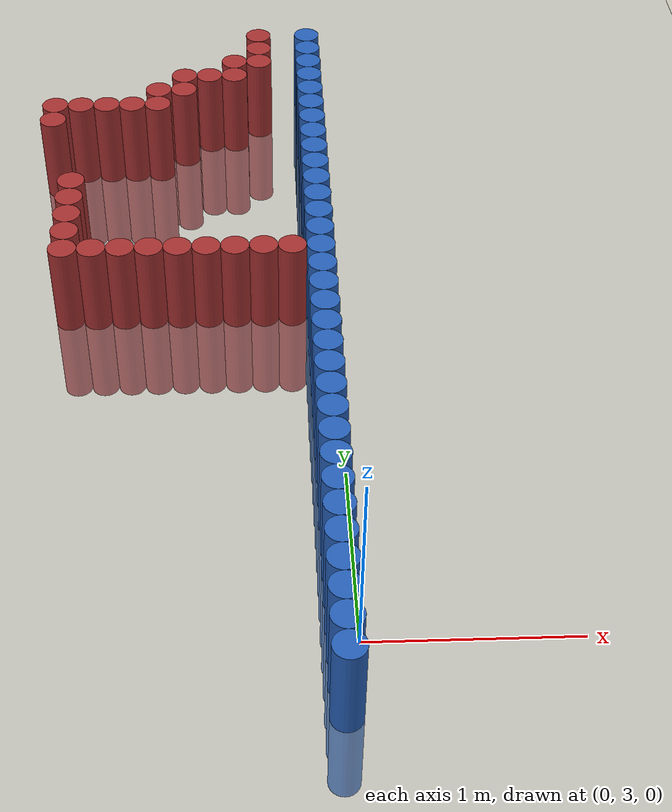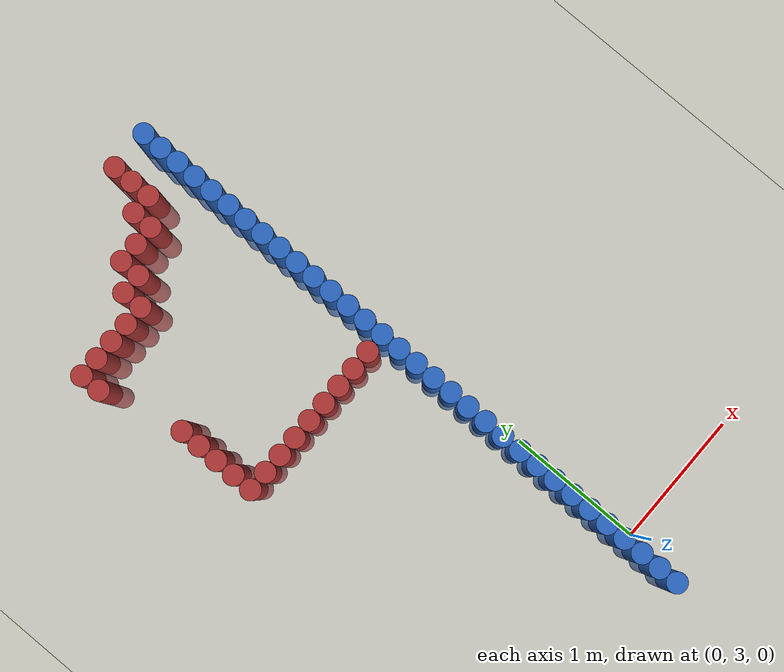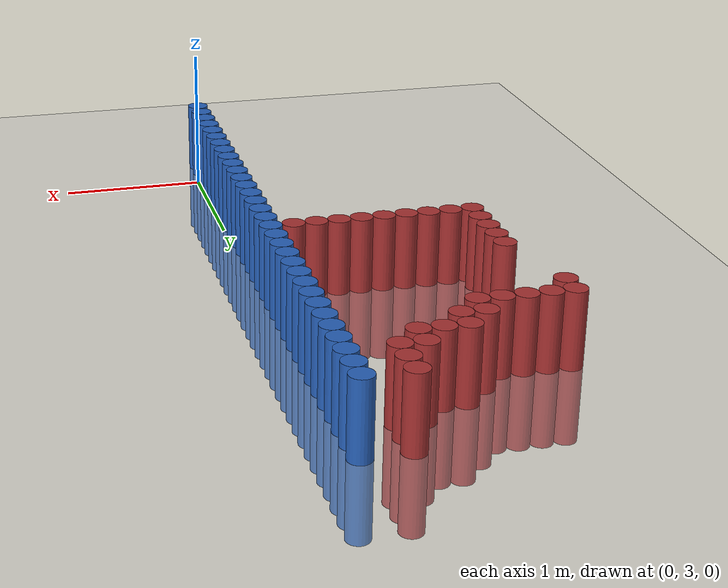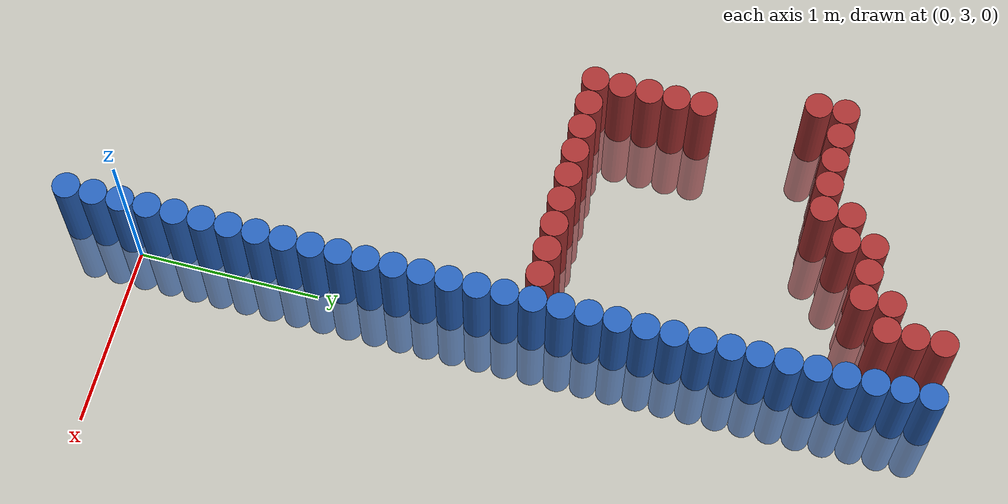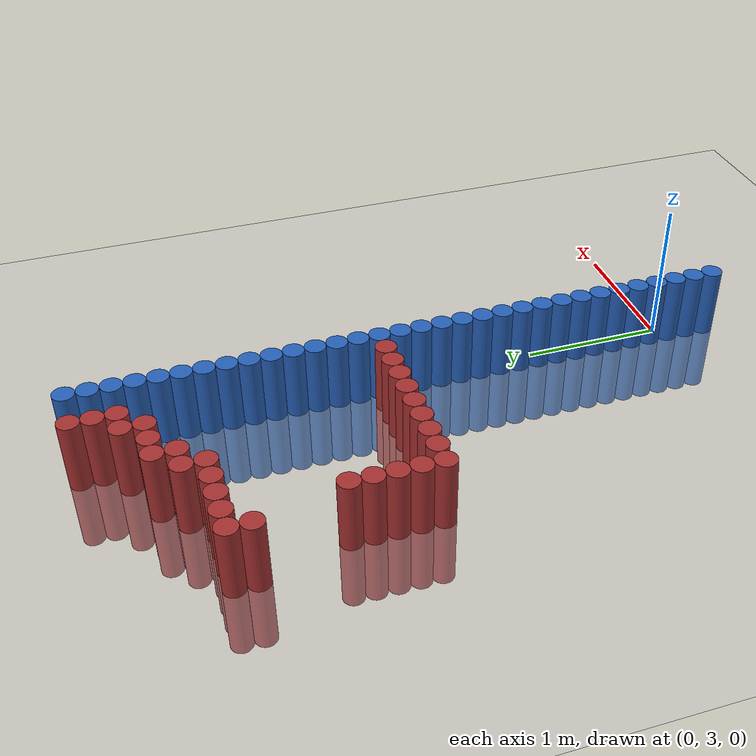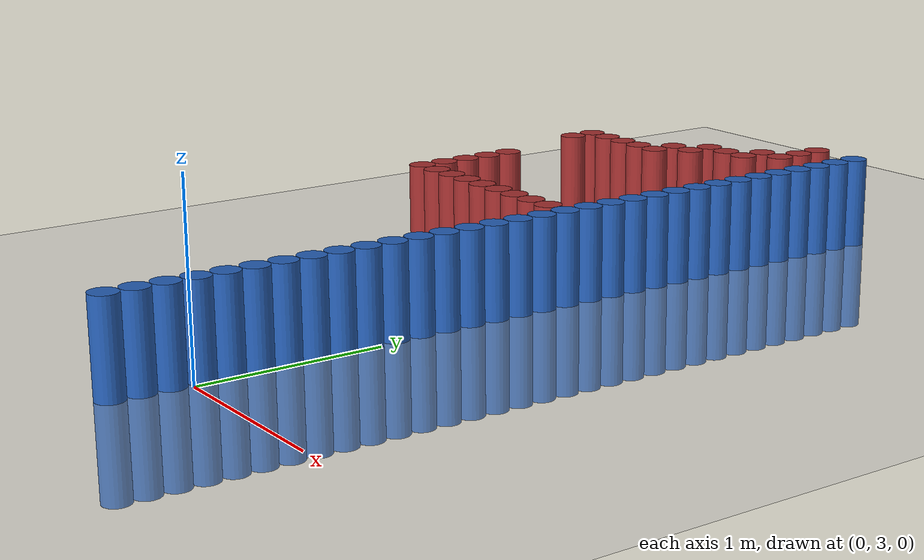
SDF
<sdf version="1.6">
 <world name="default">
  <model name="ground_plane">
   <static>1</static>
   <link name="link">
    <collision name="collision">
     <geometry><plane><normal>0 0 1</normal><size>100 100</size></plane></geometry>
     <surface><friction><ode><mu>100</mu><mu2>50</mu2></ode></friction></surface>
    </collision>
    <visual name="visual">
     <cast_shadows>0</cast_shadows>
     <geometry><plane><normal>0 0 1</normal><size>100 100</size></plane></geometry>
     <material>
      <script><uri>file://media/materials/scripts/gazebo.material</uri><name>Gazebo/Grey</name></script>
     </material>
    </visual>
   </link>
  </model>
  <model name="unit_cylinder_111">
   <static>1</static>
   <pose>-0.075 2.625 0 0 -0 0</pose>
   <link name="link">
    <inertial>
     <mass>1</mass>
     <inertia><ixx>0.145833</ixx><ixy>0</ixy><ixz>0</ixz><iyy>0.145833</iyy><iyz>0</iyz><izz>0.125</izz></inertia>
    </inertial>
    <collision name="collision">
     <geometry><cylinder><radius>0.075</radius><length>1</length></cylinder></geometry>
    </collision>
    <visual name="visual">
     <geometry><cylinder><radius>0.075</radius><length>1</length></cylinder></geometry>
     <material><ambient>0.152 0.379 0.72 1</ambient><diffuse>0.152 0.379 0.72 1</diffuse></material>
     <material>
      <script><name>Gazebo/Grey</name><uri>file://media/materials/scripts/gazebo.material</uri></script>
     </material>
    </visual>
   </link>
  </model>
  <model name="unit_cylinder_113">
   <static>1</static>
   <pose>-0.075 2.775 0 0 -0 0</pose>
   <link name="link">
    <inertial>
     <mass>1</mass>
     <inertia><ixx>0.145833</ixx><ixy>0</ixy><ixz>0</ixz><iyy>0.145833</iyy><iyz>0</iyz><izz>0.125</izz></inertia>
    </inertial>
    <collision name="collision">
     <geometry><cylinder><radius>0.075</radius><length>1</length></cylinder></geometry>
    </collision>
    <visual name="visual">
     <geometry><cylinder><radius>0.075</radius><length>1</length></cylinder></geometry>
     <material><ambient>0.152 0.379 0.72 1</ambient><diffuse>0.152 0.379 0.72 1</diffuse></material>
     <material>
      <script><name>Gazebo/Grey</name><uri>file://media/materials/scripts/gazebo.material</uri></script>
     </material>
    </visual>
   </link>
  </model>
  <model name="unit_cylinder_115">
   <static>1</static>
   <pose>-0.075 2.925 0 0 -0 0</pose>
   <link name="link">
    <inertial>
     <mass>1</mass>
     <inertia><ixx>0.145833</ixx><ixy>0</ixy><ixz>0</ixz><iyy>0.145833</iyy><iyz>0</iyz><izz>0.125</izz></inertia>
    </inertial>
    <collision name="collision">
     <geometry><cylinder><radius>0.075</radius><length>1</length></cylinder></geometry>
    </collision>
    <visual name="visual">
     <geometry><cylinder><radius>0.075</radius><length>1</length></cylinder></geometry>
     <material><ambient>0.152 0.379 0.72 1</ambient><diffuse>0.152 0.379 0.72 1</diffuse></material>
     <material>
      <script><name>Gazebo/Grey</name><uri>file://media/materials/scripts/gazebo.material</uri></script>
     </material>
    </visual>
   </link>
  </model>
  <model name="unit_cylinder_117">
   <static>1</static>
   <pose>-0.075 3.075 0 0 -0 0</pose>
   <link name="link">
    <inertial>
     <mass>1</mass>
     <inertia><ixx>0.145833</ixx><ixy>0</ixy><ixz>0</ixz><iyy>0.145833</iyy><iyz>0</iyz><izz>0.125</izz></inertia>
    </inertial>
    <collision name="collision">
     <geometry><cylinder><radius>0.075</radius><length>1</length></cylinder></geometry>
    </collision>
    <visual name="visual">
     <geometry><cylinder><radius>0.075</radius><length>1</length></cylinder></geometry>
     <material><ambient>0.152 0.379 0.72 1</ambient><diffuse>0.152 0.379 0.72 1</diffuse></material>
     <material>
      <script><name>Gazebo/Grey</name><uri>file://media/materials/scripts/gazebo.material</uri></script>
     </material>
    </visual>
   </link>
  </model>
  <model name="unit_cylinder_119">
   <static>1</static>
   <pose>-0.075 3.225 0 0 -0 0</pose>
   <link name="link">
    <inertial>
     <mass>1</mass>
     <inertia><ixx>0.145833</ixx><ixy>0</ixy><ixz>0</ixz><iyy>0.145833</iyy><iyz>0</iyz><izz>0.125</izz></inertia>
    </inertial>
    <collision name="collision">
     <geometry><cylinder><radius>0.075</radius><length>1</length></cylinder></geometry>
    </collision>
    <visual name="visual">
     <geometry><cylinder><radius>0.075</radius><length>1</length></cylinder></geometry>
     <material><ambient>0.152 0.379 0.72 1</ambient><diffuse>0.152 0.379 0.72 1</diffuse></material>
     <material>
      <script><name>Gazebo/Grey</name><uri>file://media/materials/scripts/gazebo.material</uri></script>
     </material>
    </visual>
   </link>
  </model>
  <model name="unit_cylinder_121">
   <static>1</static>
   <pose>-0.075 3.375 0 0 -0 0</pose>
   <link name="link">
    <inertial>
     <mass>1</mass>
     <inertia><ixx>0.145833</ixx><ixy>0</ixy><ixz>0</ixz><iyy>0.145833</iyy><iyz>0</iyz><izz>0.125</izz></inertia>
    </inertial>
    <collision name="collision">
     <geometry><cylinder><radius>0.075</radius><length>1</length></cylinder></geometry>
    </collision>
    <visual name="visual">
     <geometry><cylinder><radius>0.075</radius><length>1</length></cylinder></geometry>
     <material><ambient>0.152 0.379 0.72 1</ambient><diffuse>0.152 0.379 0.72 1</diffuse></material>
     <material>
      <script><name>Gazebo/Grey</name><uri>file://media/materials/scripts/gazebo.material</uri></script>
     </material>
    </visual>
   </link>
  </model>
  <model name="unit_cylinder_123">
   <static>1</static>
   <pose>-0.075 3.525 0 0 -0 0</pose>
   <link name="link">
    <inertial>
     <mass>1</mass>
     <inertia><ixx>0.145833</ixx><ixy>0</ixy><ixz>0</ixz><iyy>0.145833</iyy><iyz>0</iyz><izz>0.125</izz></inertia>
    </inertial>
    <collision name="collision">
     <geometry><cylinder><radius>0.075</radius><length>1</length></cylinder></geometry>
    </collision>
    <visual name="visual">
     <geometry><cylinder><radius>0.075</radius><length>1</length></cylinder></geometry>
     <material><ambient>0.152 0.379 0.72 1</ambient><diffuse>0.152 0.379 0.72 1</diffuse></material>
     <material>
      <script><name>Gazebo/Grey</name><uri>file://media/materials/scripts/gazebo.material</uri></script>
     </material>
    </visual>
   </link>
  </model>
  <model name="unit_cylinder_125">
   <static>1</static>
   <pose>-0.075 3.675 0 0 -0 0</pose>
   <link name="link">
    <inertial>
     <mass>1</mass>
     <inertia><ixx>0.145833</ixx><ixy>0</ixy><ixz>0</ixz><iyy>0.145833</iyy><iyz>0</iyz><izz>0.125</izz></inertia>
    </inertial>
    <collision name="collision">
     <geometry><cylinder><radius>0.075</radius><length>1</length></cylinder></geometry>
    </collision>
    <visual name="visual">
     <geometry><cylinder><radius>0.075</radius><length>1</length></cylinder></geometry>
     <material><ambient>0.152 0.379 0.72 1</ambient><diffuse>0.152 0.379 0.72 1</diffuse></material>
     <material>
      <script><name>Gazebo/Grey</name><uri>file://media/materials/scripts/gazebo.material</uri></script>
     </material>
    </visual>
   </link>
  </model>
  <model name="unit_cylinder_127">
   <static>1</static>
   <pose>-0.075 3.825 0 0 -0 0</pose>
   <link name="link">
    <inertial>
     <mass>1</mass>
     <inertia><ixx>0.145833</ixx><ixy>0</ixy><ixz>0</ixz><iyy>0.145833</iyy><iyz>0</iyz><izz>0.125</izz></inertia>
    </inertial>
    <collision name="collision">
     <geometry><cylinder><radius>0.075</radius><length>1</length></cylinder></geometry>
    </collision>
    <visual name="visual">
     <geometry><cylinder><radius>0.075</radius><length>1</length></cylinder></geometry>
     <material><ambient>0.152 0.379 0.72 1</ambient><diffuse>0.152 0.379 0.72 1</diffuse></material>
     <material>
      <script><name>Gazebo/Grey</name><uri>file://media/materials/scripts/gazebo.material</uri></script>
     </material>
    </visual>
   </link>
  </model>
  <model name="unit_cylinder_129">
   <static>1</static>
   <pose>-0.075 3.975 0 0 -0 0</pose>
   <link name="link">
    <inertial>
     <mass>1</mass>
     <inertia><ixx>0.145833</ixx><ixy>0</ixy><ixz>0</ixz><iyy>0.145833</iyy><iyz>0</iyz><izz>0.125</izz></inertia>
    </inertial>
    <collision name="collision">
     <geometry><cylinder><radius>0.075</radius><length>1</length></cylinder></geometry>
    </collision>
    <visual name="visual">
     <geometry><cylinder><radius>0.075</radius><length>1</length></cylinder></geometry>
     <material><ambient>0.152 0.379 0.72 1</ambient><diffuse>0.152 0.379 0.72 1</diffuse></material>
     <material>
      <script><name>Gazebo/Grey</name><uri>file://media/materials/scripts/gazebo.material</uri></script>
     </material>
    </visual>
   </link>
  </model>
  <model name="unit_cylinder_131">
   <static>1</static>
   <pose>-0.075 4.125 0 0 -0 0</pose>
   <link name="link">
    <inertial>
     <mass>1</mass>
     <inertia><ixx>0.145833</ixx><ixy>0</ixy><ixz>0</ixz><iyy>0.145833</iyy><iyz>0</iyz><izz>0.125</izz></inertia>
    </inertial>
    <collision name="collision">
     <geometry><cylinder><radius>0.075</radius><length>1</length></cylinder></geometry>
    </collision>
    <visual name="visual">
     <geometry><cylinder><radius>0.075</radius><length>1</length></cylinder></geometry>
     <material><ambient>0.152 0.379 0.72 1</ambient><diffuse>0.152 0.379 0.72 1</diffuse></material>
     <material>
      <script><name>Gazebo/Grey</name><uri>file://media/materials/scripts/gazebo.material</uri></script>
     </material>
    </visual>
   </link>
  </model>
  <model name="unit_cylinder_133">
   <static>1</static>
   <pose>-0.075 4.275 0 0 -0 0</pose>
   <link name="link">
    <inertial>
     <mass>1</mass>
     <inertia><ixx>0.145833</ixx><ixy>0</ixy><ixz>0</ixz><iyy>0.145833</iyy><iyz>0</iyz><izz>0.125</izz></inertia>
    </inertial>
    <collision name="collision">
     <geometry><cylinder><radius>0.075</radius><length>1</length></cylinder></geometry>
    </collision>
    <visual name="visual">
     <geometry><cylinder><radius>0.075</radius><length>1</length></cylinder></geometry>
     <material><ambient>0.152 0.379 0.72 1</ambient><diffuse>0.152 0.379 0.72 1</diffuse></material>
     <material>
      <script><name>Gazebo/Grey</name><uri>file://media/materials/scripts/gazebo.material</uri></script>
     </material>
    </visual>
   </link>
  </model>
  <model name="unit_cylinder_135">
   <static>1</static>
   <pose>-0.075 4.425 0 0 -0 0</pose>
   <link name="link">
    <inertial>
     <mass>1</mass>
     <inertia><ixx>0.145833</ixx><ixy>0</ixy><ixz>0</ixz><iyy>0.145833</iyy><iyz>0</iyz><izz>0.125</izz></inertia>
    </inertial>
    <collision name="collision">
     <geometry><cylinder><radius>0.075</radius><length>1</length></cylinder></geometry>
    </collision>
    <visual name="visual">
     <geometry><cylinder><radius>0.075</radius><length>1</length></cylinder></geometry>
     <material><ambient>0.152 0.379 0.72 1</ambient><diffuse>0.152 0.379 0.72 1</diffuse></material>
     <material>
      <script><name>Gazebo/Grey</name><uri>file://media/materials/scripts/gazebo.material</uri></script>
     </material>
    </visual>
   </link>
  </model>
  <model name="unit_cylinder_137">
   <static>1</static>
   <pose>-0.075 4.575 0 0 -0 0</pose>
   <link name="link">
    <inertial>
     <mass>1</mass>
     <inertia><ixx>0.145833</ixx><ixy>0</ixy><ixz>0</ixz><iyy>0.145833</iyy><iyz>0</iyz><izz>0.125</izz></inertia>
    </inertial>
    <collision name="collision">
     <geometry><cylinder><radius>0.075</radius><length>1</length></cylinder></geometry>
    </collision>
    <visual name="visual">
     <geometry><cylinder><radius>0.075</radius><length>1</length></cylinder></geometry>
     <material><ambient>0.152 0.379 0.72 1</ambient><diffuse>0.152 0.379 0.72 1</diffuse></material>
     <material>
      <script><name>Gazebo/Grey</name><uri>file://media/materials/scripts/gazebo.material</uri></script>
     </material>
    </visual>
   </link>
  </model>
  <model name="unit_cylinder_139">
   <static>1</static>
   <pose>-0.075 4.725 0 0 -0 0</pose>
   <link name="link">
    <inertial>
     <mass>1</mass>
     <inertia><ixx>0.145833</ixx><ixy>0</ixy><ixz>0</ixz><iyy>0.145833</iyy><iyz>0</iyz><izz>0.125</izz></inertia>
    </inertial>
    <collision name="collision">
     <geometry><cylinder><radius>0.075</radius><length>1</length></cylinder></geometry>
    </collision>
    <visual name="visual">
     <geometry><cylinder><radius>0.075</radius><length>1</length></cylinder></geometry>
     <material><ambient>0.152 0.379 0.72 1</ambient><diffuse>0.152 0.379 0.72 1</diffuse></material>
     <material>
      <script><name>Gazebo/Grey</name><uri>file://media/materials/scripts/gazebo.material</uri></script>
     </material>
    </visual>
   </link>
  </model>
  <model name="unit_cylinder_141">
   <static>1</static>
   <pose>-0.075 4.875 0 0 -0 0</pose>
   <link name="link">
    <inertial>
     <mass>1</mass>
     <inertia><ixx>0.145833</ixx><ixy>0</ixy><ixz>0</ixz><iyy>0.145833</iyy><iyz>0</iyz><izz>0.125</izz></inertia>
    </inertial>
    <collision name="collision">
     <geometry><cylinder><radius>0.075</radius><length>1</length></cylinder></geometry>
    </collision>
    <visual name="visual">
     <geometry><cylinder><radius>0.075</radius><length>1</length></cylinder></geometry>
     <material><ambient>0.152 0.379 0.72 1</ambient><diffuse>0.152 0.379 0.72 1</diffuse></material>
     <material>
      <script><name>Gazebo/Grey</name><uri>file://media/materials/scripts/gazebo.material</uri></script>
     </material>
    </visual>
   </link>
  </model>
  <model name="unit_cylinder_143">
   <static>1</static>
   <pose>-0.075 5.025 0 0 -0 0</pose>
   <link name="link">
    <inertial>
     <mass>1</mass>
     <inertia><ixx>0.145833</ixx><ixy>0</ixy><ixz>0</ixz><iyy>0.145833</iyy><iyz>0</iyz><izz>0.125</izz></inertia>
    </inertial>
    <collision name="collision">
     <geometry><cylinder><radius>0.075</radius><length>1</length></cylinder></geometry>
    </collision>
    <visual name="visual">
     <geometry><cylinder><radius>0.075</radius><length>1</length></cylinder></geometry>
     <material><ambient>0.152 0.379 0.72 1</ambient><diffuse>0.152 0.379 0.72 1</diffuse></material>
     <material>
      <script><name>Gazebo/Grey</name><uri>file://media/materials/scripts/gazebo.material</uri></script>
     </material>
    </visual>
   </link>
  </model>
  <model name="unit_cylinder_1369">
   <static>1</static>
   <pose>-1.575 6.375 0 0 -0 0</pose>
   <link name="link">
    <inertial>
     <mass>1</mass>
     <inertia><ixx>0.145833</ixx><ixy>0</ixy><ixz>0</ixz><iyy>0.145833</iyy><iyz>0</iyz><izz>0.125</izz></inertia>
    </inertial>
    <collision name="collision">
     <geometry><cylinder><radius>0.075</radius><length>1</length></cylinder></geometry>
    </collision>
    <visual name="visual">
     <geometry><cylinder><radius>0.075</radius><length>1</length></cylinder></geometry>
     <material><ambient>0.648 0.192 0.192 1</ambient><diffuse>0.648 0.192 0.192 1</diffuse></material>
     <material>
      <script><name>Gazebo/Grey</name><uri>file://media/materials/scripts/gazebo.material</uri></script>
     </material>
    </visual>
   </link>
  </model>
  <model name="unit_cylinder_1370">
   <static>1</static>
   <pose>-1.575 6.525 0 0 -0 0</pose>
   <link name="link">
    <inertial>
     <mass>1</mass>
     <inertia><ixx>0.145833</ixx><ixy>0</ixy><ixz>0</ixz><iyy>0.145833</iyy><iyz>0</iyz><izz>0.125</izz></inertia>
    </inertial>
    <collision name="collision">
     <geometry><cylinder><radius>0.075</radius><length>1</length></cylinder></geometry>
    </collision>
    <visual name="visual">
     <geometry><cylinder><radius>0.075</radius><length>1</length></cylinder></geometry>
     <material><ambient>0.648 0.192 0.192 1</ambient><diffuse>0.648 0.192 0.192 1</diffuse></material>
     <material>
      <script><name>Gazebo/Grey</name><uri>file://media/materials/scripts/gazebo.material</uri></script>
     </material>
    </visual>
   </link>
  </model>
  <model name="unit_cylinder_1384">
   <static>1</static>
   <pose>-1.425 5.175 0 0 -0 0</pose>
   <link name="link">
    <inertial>
     <mass>1</mass>
     <inertia><ixx>0.145833</ixx><ixy>0</ixy><ixz>0</ixz><iyy>0.145833</iyy><iyz>0</iyz><izz>0.125</izz></inertia>
    </inertial>
    <collision name="collision">
     <geometry><cylinder><radius>0.075</radius><length>1</length></cylinder></geometry>
    </collision>
    <visual name="visual">
     <geometry><cylinder><radius>0.075</radius><length>1</length></cylinder></geometry>
     <material><ambient>0.648 0.192 0.192 1</ambient><diffuse>0.648 0.192 0.192 1</diffuse></material>
     <material>
      <script><name>Gazebo/Grey</name><uri>file://media/materials/scripts/gazebo.material</uri></script>
     </material>
    </visual>
   </link>
  </model>
  <model name="unit_cylinder_1385">
   <static>1</static>
   <pose>-1.425 5.325 0 0 -0 0</pose>
   <link name="link">
    <inertial>
     <mass>1</mass>
     <inertia><ixx>0.145833</ixx><ixy>0</ixy><ixz>0</ixz><iyy>0.145833</iyy><iyz>0</iyz><izz>0.125</izz></inertia>
    </inertial>
    <collision name="collision">
     <geometry><cylinder><radius>0.075</radius><length>1</length></cylinder></geometry>
    </collision>
    <visual name="visual">
     <geometry><cylinder><radius>0.075</radius><length>1</length></cylinder></geometry>
     <material><ambient>0.648 0.192 0.192 1</ambient><diffuse>0.648 0.192 0.192 1</diffuse></material>
     <material>
      <script><name>Gazebo/Grey</name><uri>file://media/materials/scripts/gazebo.material</uri></script>
     </material>
    </visual>
   </link>
  </model>
  <model name="unit_cylinder_1386">
   <static>1</static>
   <pose>-1.425 5.475 0 0 -0 0</pose>
   <link name="link">
    <inertial>
     <mass>1</mass>
     <inertia><ixx>0.145833</ixx><ixy>0</ixy><ixz>0</ixz><iyy>0.145833</iyy><iyz>0</iyz><izz>0.125</izz></inertia>
    </inertial>
    <collision name="collision">
     <geometry><cylinder><radius>0.075</radius><length>1</length></cylinder></geometry>
    </collision>
    <visual name="visual">
     <geometry><cylinder><radius>0.075</radius><length>1</length></cylinder></geometry>
     <material><ambient>0.648 0.192 0.192 1</ambient><diffuse>0.648 0.192 0.192 1</diffuse></material>
     <material>
      <script><name>Gazebo/Grey</name><uri>file://media/materials/scripts/gazebo.material</uri></script>
     </material>
    </visual>
   </link>
  </model>
  <model name="unit_cylinder_1387">
   <static>1</static>
   <pose>-1.425 5.625 0 0 -0 0</pose>
   <link name="link">
    <inertial>
     <mass>1</mass>
     <inertia><ixx>0.145833</ixx><ixy>0</ixy><ixz>0</ixz><iyy>0.145833</iyy><iyz>0</iyz><izz>0.125</izz></inertia>
    </inertial>
    <collision name="collision">
     <geometry><cylinder><radius>0.075</radius><length>1</length></cylinder></geometry>
    </collision>
    <visual name="visual">
     <geometry><cylinder><radius>0.075</radius><length>1</length></cylinder></geometry>
     <material><ambient>0.648 0.192 0.192 1</ambient><diffuse>0.648 0.192 0.192 1</diffuse></material>
     <material>
      <script><name>Gazebo/Grey</name><uri>file://media/materials/scripts/gazebo.material</uri></script>
     </material>
    </visual>
   </link>
  </model>
  <model name="unit_cylinder_1388">
   <static>1</static>
   <pose>-1.425 5.775 0 0 -0 0</pose>
   <link name="link">
    <inertial>
     <mass>1</mass>
     <inertia><ixx>0.145833</ixx><ixy>0</ixy><ixz>0</ixz><iyy>0.145833</iyy><iyz>0</iyz><izz>0.125</izz></inertia>
    </inertial>
    <collision name="collision">
     <geometry><cylinder><radius>0.075</radius><length>1</length></cylinder></geometry>
    </collision>
    <visual name="visual">
     <geometry><cylinder><radius>0.075</radius><length>1</length></cylinder></geometry>
     <material><ambient>0.648 0.192 0.192 1</ambient><diffuse>0.648 0.192 0.192 1</diffuse></material>
     <material>
      <script><name>Gazebo/Grey</name><uri>file://media/materials/scripts/gazebo.material</uri></script>
     </material>
    </visual>
   </link>
  </model>
  <model name="unit_cylinder_1389">
   <static>1</static>
   <pose>-1.425 6.525 0 0 -0 0</pose>
   <link name="link">
    <inertial>
     <mass>1</mass>
     <inertia><ixx>0.145833</ixx><ixy>0</ixy><ixz>0</ixz><iyy>0.145833</iyy><iyz>0</iyz><izz>0.125</izz></inertia>
    </inertial>
    <collision name="collision">
     <geometry><cylinder><radius>0.075</radius><length>1</length></cylinder></geometry>
    </collision>
    <visual name="visual">
     <geometry><cylinder><radius>0.075</radius><length>1</length></cylinder></geometry>
     <material><ambient>0.648 0.192 0.192 1</ambient><diffuse>0.648 0.192 0.192 1</diffuse></material>
     <material>
      <script><name>Gazebo/Grey</name><uri>file://media/materials/scripts/gazebo.material</uri></script>
     </material>
    </visual>
   </link>
  </model>
  <model name="unit_cylinder_1403">
   <static>1</static>
   <pose>-1.275 5.175 0 0 -0 0</pose>
   <link name="link">
    <inertial>
     <mass>1</mass>
     <inertia><ixx>0.145833</ixx><ixy>0</ixy><ixz>0</ixz><iyy>0.145833</iyy><iyz>0</iyz><izz>0.125</izz></inertia>
    </inertial>
    <collision name="collision">
     <geometry><cylinder><radius>0.075</radius><length>1</length></cylinder></geometry>
    </collision>
    <visual name="visual">
     <geometry><cylinder><radius>0.075</radius><length>1</length></cylinder></geometry>
     <material><ambient>0.648 0.192 0.192 1</ambient><diffuse>0.648 0.192 0.192 1</diffuse></material>
     <material>
      <script><name>Gazebo/Grey</name><uri>file://media/materials/scripts/gazebo.material</uri></script>
     </material>
    </visual>
   </link>
  </model>
  <model name="unit_cylinder_1404">
   <static>1</static>
   <pose>-1.275 6.525 0 0 -0 0</pose>
   <link name="link">
    <inertial>
     <mass>1</mass>
     <inertia><ixx>0.145833</ixx><ixy>0</ixy><ixz>0</ixz><iyy>0.145833</iyy><iyz>0</iyz><izz>0.125</izz></inertia>
    </inertial>
    <collision name="collision">
     <geometry><cylinder><radius>0.075</radius><length>1</length></cylinder></geometry>
    </collision>
    <visual name="visual">
     <geometry><cylinder><radius>0.075</radius><length>1</length></cylinder></geometry>
     <material><ambient>0.648 0.192 0.192 1</ambient><diffuse>0.648 0.192 0.192 1</diffuse></material>
     <material>
      <script><name>Gazebo/Grey</name><uri>file://media/materials/scripts/gazebo.material</uri></script>
     </material>
    </visual>
   </link>
  </model>
  <model name="unit_cylinder_1423">
   <static>1</static>
   <pose>-1.125 5.175 0 0 -0 0</pose>
   <link name="link">
    <inertial>
     <mass>1</mass>
     <inertia><ixx>0.145833</ixx><ixy>0</ixy><ixz>0</ixz><iyy>0.145833</iyy><iyz>0</iyz><izz>0.125</izz></inertia>
    </inertial>
    <collision name="collision">
     <geometry><cylinder><radius>0.075</radius><length>1</length></cylinder></geometry>
    </collision>
    <visual name="visual">
     <geometry><cylinder><radius>0.075</radius><length>1</length></cylinder></geometry>
     <material><ambient>0.648 0.192 0.192 1</ambient><diffuse>0.648 0.192 0.192 1</diffuse></material>
     <material>
      <script><name>Gazebo/Grey</name><uri>file://media/materials/scripts/gazebo.material</uri></script>
     </material>
    </visual>
   </link>
  </model>
  <model name="unit_cylinder_1424">
   <static>1</static>
   <pose>-1.125 6.525 0 0 -0 0</pose>
   <link name="link">
    <inertial>
     <mass>1</mass>
     <inertia><ixx>0.145833</ixx><ixy>0</ixy><ixz>0</ixz><iyy>0.145833</iyy><iyz>0</iyz><izz>0.125</izz></inertia>
    </inertial>
    <collision name="collision">
     <geometry><cylinder><radius>0.075</radius><length>1</length></cylinder></geometry>
    </collision>
    <visual name="visual">
     <geometry><cylinder><radius>0.075</radius><length>1</length></cylinder></geometry>
     <material><ambient>0.648 0.192 0.192 1</ambient><diffuse>0.648 0.192 0.192 1</diffuse></material>
     <material>
      <script><name>Gazebo/Grey</name><uri>file://media/materials/scripts/gazebo.material</uri></script>
     </material>
    </visual>
   </link>
  </model>
  <model name="unit_cylinder_1447">
   <static>1</static>
   <pose>-0.975 5.175 0 0 -0 0</pose>
   <link name="link">
    <inertial>
     <mass>1</mass>
     <inertia><ixx>0.145833</ixx><ixy>0</ixy><ixz>0</ixz><iyy>0.145833</iyy><iyz>0</iyz><izz>0.125</izz></inertia>
    </inertial>
    <collision name="collision">
     <geometry><cylinder><radius>0.075</radius><length>1</length></cylinder></geometry>
    </collision>
    <visual name="visual">
     <geometry><cylinder><radius>0.075</radius><length>1</length></cylinder></geometry>
     <material><ambient>0.648 0.192 0.192 1</ambient><diffuse>0.648 0.192 0.192 1</diffuse></material>
     <material>
      <script><name>Gazebo/Grey</name><uri>file://media/materials/scripts/gazebo.material</uri></script>
     </material>
    </visual>
   </link>
  </model>
  <model name="unit_cylinder_1448">
   <static>1</static>
   <pose>-0.975 6.525 0 0 -0 0</pose>
   <link name="link">
    <inertial>
     <mass>1</mass>
     <inertia><ixx>0.145833</ixx><ixy>0</ixy><ixz>0</ixz><iyy>0.145833</iyy><iyz>0</iyz><izz>0.125</izz></inertia>
    </inertial>
    <collision name="collision">
     <geometry><cylinder><radius>0.075</radius><length>1</length></cylinder></geometry>
    </collision>
    <visual name="visual">
     <geometry><cylinder><radius>0.075</radius><length>1</length></cylinder></geometry>
     <material><ambient>0.648 0.192 0.192 1</ambient><diffuse>0.648 0.192 0.192 1</diffuse></material>
     <material>
      <script><name>Gazebo/Grey</name><uri>file://media/materials/scripts/gazebo.material</uri></script>
     </material>
    </visual>
   </link>
  </model>
  <model name="unit_cylinder_1449">
   <static>1</static>
   <pose>-0.975 6.675 0 0 -0 0</pose>
   <link name="link">
    <inertial>
     <mass>1</mass>
     <inertia><ixx>0.145833</ixx><ixy>0</ixy><ixz>0</ixz><iyy>0.145833</iyy><iyz>0</iyz><izz>0.125</izz></inertia>
    </inertial>
    <collision name="collision">
     <geometry><cylinder><radius>0.075</radius><length>1</length></cylinder></geometry>
    </collision>
    <visual name="visual">
     <geometry><cylinder><radius>0.075</radius><length>1</length></cylinder></geometry>
     <material><ambient>0.648 0.192 0.192 1</ambient><diffuse>0.648 0.192 0.192 1</diffuse></material>
     <material>
      <script><name>Gazebo/Grey</name><uri>file://media/materials/scripts/gazebo.material</uri></script>
     </material>
    </visual>
   </link>
  </model>
  <model name="unit_cylinder_1473">
   <static>1</static>
   <pose>-0.825 5.175 0 0 -0 0</pose>
   <link name="link">
    <inertial>
     <mass>1</mass>
     <inertia><ixx>0.145833</ixx><ixy>0</ixy><ixz>0</ixz><iyy>0.145833</iyy><iyz>0</iyz><izz>0.125</izz></inertia>
    </inertial>
    <collision name="collision">
     <geometry><cylinder><radius>0.075</radius><length>1</length></cylinder></geometry>
    </collision>
    <visual name="visual">
     <geometry><cylinder><radius>0.075</radius><length>1</length></cylinder></geometry>
     <material><ambient>0.648 0.192 0.192 1</ambient><diffuse>0.648 0.192 0.192 1</diffuse></material>
     <material>
      <script><name>Gazebo/Grey</name><uri>file://media/materials/scripts/gazebo.material</uri></script>
     </material>
    </visual>
   </link>
  </model>
  <model name="unit_cylinder_1474">
   <static>1</static>
   <pose>-0.825 6.675 0 0 -0 0</pose>
   <link name="link">
    <inertial>
     <mass>1</mass>
     <inertia><ixx>0.145833</ixx><ixy>0</ixy><ixz>0</ixz><iyy>0.145833</iyy><iyz>0</iyz><izz>0.125</izz></inertia>
    </inertial>
    <collision name="collision">
     <geometry><cylinder><radius>0.075</radius><length>1</length></cylinder></geometry>
    </collision>
    <visual name="visual">
     <geometry><cylinder><radius>0.075</radius><length>1</length></cylinder></geometry>
     <material><ambient>0.648 0.192 0.192 1</ambient><diffuse>0.648 0.192 0.192 1</diffuse></material>
     <material>
      <script><name>Gazebo/Grey</name><uri>file://media/materials/scripts/gazebo.material</uri></script>
     </material>
    </visual>
   </link>
  </model>
  <model name="unit_cylinder_1475">
   <static>1</static>
   <pose>-0.825 6.825 0 0 -0 0</pose>
   <link name="link">
    <inertial>
     <mass>1</mass>
     <inertia><ixx>0.145833</ixx><ixy>0</ixy><ixz>0</ixz><iyy>0.145833</iyy><iyz>0</iyz><izz>0.125</izz></inertia>
    </inertial>
    <collision name="collision">
     <geometry><cylinder><radius>0.075</radius><length>1</length></cylinder></geometry>
    </collision>
    <visual name="visual">
     <geometry><cylinder><radius>0.075</radius><length>1</length></cylinder></geometry>
     <material><ambient>0.648 0.192 0.192 1</ambient><diffuse>0.648 0.192 0.192 1</diffuse></material>
     <material>
      <script><name>Gazebo/Grey</name><uri>file://media/materials/scripts/gazebo.material</uri></script>
     </material>
    </visual>
   </link>
  </model>
  <model name="unit_cylinder_1490">
   <static>1</static>
   <pose>-0.675 5.175 0 0 -0 0</pose>
   <link name="link">
    <inertial>
     <mass>1</mass>
     <inertia><ixx>0.145833</ixx><ixy>0</ixy><ixz>0</ixz><iyy>0.145833</iyy><iyz>0</iyz><izz>0.125</izz></inertia>
    </inertial>
    <collision name="collision">
     <geometry><cylinder><radius>0.075</radius><length>1</length></cylinder></geometry>
    </collision>
    <visual name="visual">
     <geometry><cylinder><radius>0.075</radius><length>1</length></cylinder></geometry>
     <material><ambient>0.648 0.192 0.192 1</ambient><diffuse>0.648 0.192 0.192 1</diffuse></material>
     <material>
      <script><name>Gazebo/Grey</name><uri>file://media/materials/scripts/gazebo.material</uri></script>
     </material>
    </visual>
   </link>
  </model>
  <model name="unit_cylinder_1491">
   <static>1</static>
   <pose>-0.675 6.825 0 0 -0 0</pose>
   <link name="link">
    <inertial>
     <mass>1</mass>
     <inertia><ixx>0.145833</ixx><ixy>0</ixy><ixz>0</ixz><iyy>0.145833</iyy><iyz>0</iyz><izz>0.125</izz></inertia>
    </inertial>
    <collision name="collision">
     <geometry><cylinder><radius>0.075</radius><length>1</length></cylinder></geometry>
    </collision>
    <visual name="visual">
     <geometry><cylinder><radius>0.075</radius><length>1</length></cylinder></geometry>
     <material><ambient>0.648 0.192 0.192 1</ambient><diffuse>0.648 0.192 0.192 1</diffuse></material>
     <material>
      <script><name>Gazebo/Grey</name><uri>file://media/materials/scripts/gazebo.material</uri></script>
     </material>
    </visual>
   </link>
  </model>
  <model name="unit_cylinder_1504">
   <static>1</static>
   <pose>-0.525 5.175 0 0 -0 0</pose>
   <link name="link">
    <inertial>
     <mass>1</mass>
     <inertia><ixx>0.145833</ixx><ixy>0</ixy><ixz>0</ixz><iyy>0.145833</iyy><iyz>0</iyz><izz>0.125</izz></inertia>
    </inertial>
    <collision name="collision">
     <geometry><cylinder><radius>0.075</radius><length>1</length></cylinder></geometry>
    </collision>
    <visual name="visual">
     <geometry><cylinder><radius>0.075</radius><length>1</length></cylinder></geometry>
     <material><ambient>0.648 0.192 0.192 1</ambient><diffuse>0.648 0.192 0.192 1</diffuse></material>
     <material>
      <script><name>Gazebo/Grey</name><uri>file://media/materials/scripts/gazebo.material</uri></script>
     </material>
    </visual>
   </link>
  </model>
  <model name="unit_cylinder_1505">
   <static>1</static>
   <pose>-0.525 6.825 0 0 -0 0</pose>
   <link name="link">
    <inertial>
     <mass>1</mass>
     <inertia><ixx>0.145833</ixx><ixy>0</ixy><ixz>0</ixz><iyy>0.145833</iyy><iyz>0</iyz><izz>0.125</izz></inertia>
    </inertial>
    <collision name="collision">
     <geometry><cylinder><radius>0.075</radius><length>1</length></cylinder></geometry>
    </collision>
    <visual name="visual">
     <geometry><cylinder><radius>0.075</radius><length>1</length></cylinder></geometry>
     <material><ambient>0.648 0.192 0.192 1</ambient><diffuse>0.648 0.192 0.192 1</diffuse></material>
     <material>
      <script><name>Gazebo/Grey</name><uri>file://media/materials/scripts/gazebo.material</uri></script>
     </material>
    </visual>
   </link>
  </model>
  <model name="unit_cylinder_1506">
   <static>1</static>
   <pose>-0.525 6.975 0 0 -0 0</pose>
   <link name="link">
    <inertial>
     <mass>1</mass>
     <inertia><ixx>0.145833</ixx><ixy>0</ixy><ixz>0</ixz><iyy>0.145833</iyy><iyz>0</iyz><izz>0.125</izz></inertia>
    </inertial>
    <collision name="collision">
     <geometry><cylinder><radius>0.075</radius><length>1</length></cylinder></geometry>
    </collision>
    <visual name="visual">
     <geometry><cylinder><radius>0.075</radius><length>1</length></cylinder></geometry>
     <material><ambient>0.648 0.192 0.192 1</ambient><diffuse>0.648 0.192 0.192 1</diffuse></material>
     <material>
      <script><name>Gazebo/Grey</name><uri>file://media/materials/scripts/gazebo.material</uri></script>
     </material>
    </visual>
   </link>
  </model>
  <model name="unit_cylinder_1531">
   <static>1</static>
   <pose>-0.375 5.175 0 0 -0 0</pose>
   <link name="link">
    <inertial>
     <mass>1</mass>
     <inertia><ixx>0.145833</ixx><ixy>0</ixy><ixz>0</ixz><iyy>0.145833</iyy><iyz>0</iyz><izz>0.125</izz></inertia>
    </inertial>
    <collision name="collision">
     <geometry><cylinder><radius>0.075</radius><length>1</length></cylinder></geometry>
    </collision>
    <visual name="visual">
     <geometry><cylinder><radius>0.075</radius><length>1</length></cylinder></geometry>
     <material><ambient>0.648 0.192 0.192 1</ambient><diffuse>0.648 0.192 0.192 1</diffuse></material>
     <material>
      <script><name>Gazebo/Grey</name><uri>file://media/materials/scripts/gazebo.material</uri></script>
     </material>
    </visual>
   </link>
  </model>
  <model name="unit_cylinder_1532">
   <static>1</static>
   <pose>-0.375 6.975 0 0 -0 0</pose>
   <link name="link">
    <inertial>
     <mass>1</mass>
     <inertia><ixx>0.145833</ixx><ixy>0</ixy><ixz>0</ixz><iyy>0.145833</iyy><iyz>0</iyz><izz>0.125</izz></inertia>
    </inertial>
    <collision name="collision">
     <geometry><cylinder><radius>0.075</radius><length>1</length></cylinder></geometry>
    </collision>
    <visual name="visual">
     <geometry><cylinder><radius>0.075</radius><length>1</length></cylinder></geometry>
     <material><ambient>0.648 0.192 0.192 1</ambient><diffuse>0.648 0.192 0.192 1</diffuse></material>
     <material>
      <script><name>Gazebo/Grey</name><uri>file://media/materials/scripts/gazebo.material</uri></script>
     </material>
    </visual>
   </link>
  </model>
  <model name="unit_cylinder_1533">
   <static>1</static>
   <pose>-0.375 7.125 0 0 -0 0</pose>
   <link name="link">
    <inertial>
     <mass>1</mass>
     <inertia><ixx>0.145833</ixx><ixy>0</ixy><ixz>0</ixz><iyy>0.145833</iyy><iyz>0</iyz><izz>0.125</izz></inertia>
    </inertial>
    <collision name="collision">
     <geometry><cylinder><radius>0.075</radius><length>1</length></cylinder></geometry>
    </collision>
    <visual name="visual">
     <geometry><cylinder><radius>0.075</radius><length>1</length></cylinder></geometry>
     <material><ambient>0.648 0.192 0.192 1</ambient><diffuse>0.648 0.192 0.192 1</diffuse></material>
     <material>
      <script><name>Gazebo/Grey</name><uri>file://media/materials/scripts/gazebo.material</uri></script>
     </material>
    </visual>
   </link>
  </model>
  <model name="unit_cylinder_1534">
   <static>1</static>
   <pose>-0.375 7.275 0 0 -0 0</pose>
   <link name="link">
    <inertial>
     <mass>1</mass>
     <inertia><ixx>0.145833</ixx><ixy>0</ixy><ixz>0</ixz><iyy>0.145833</iyy><iyz>0</iyz><izz>0.125</izz></inertia>
    </inertial>
    <collision name="collision">
     <geometry><cylinder><radius>0.075</radius><length>1</length></cylinder></geometry>
    </collision>
    <visual name="visual">
     <geometry><cylinder><radius>0.075</radius><length>1</length></cylinder></geometry>
     <material><ambient>0.648 0.192 0.192 1</ambient><diffuse>0.648 0.192 0.192 1</diffuse></material>
     <material>
      <script><name>Gazebo/Grey</name><uri>file://media/materials/scripts/gazebo.material</uri></script>
     </material>
    </visual>
   </link>
  </model>
  <model name="unit_cylinder_1552">
   <static>1</static>
   <pose>-0.225 5.175 0 0 -0 0</pose>
   <link name="link">
    <inertial>
     <mass>1</mass>
     <inertia><ixx>0.145833</ixx><ixy>0</ixy><ixz>0</ixz><iyy>0.145833</iyy><iyz>0</iyz><izz>0.125</izz></inertia>
    </inertial>
    <collision name="collision">
     <geometry><cylinder><radius>0.075</radius><length>1</length></cylinder></geometry>
    </collision>
    <visual name="visual">
     <geometry><cylinder><radius>0.075</radius><length>1</length></cylinder></geometry>
     <material><ambient>0.648 0.192 0.192 1</ambient><diffuse>0.648 0.192 0.192 1</diffuse></material>
     <material>
      <script><name>Gazebo/Grey</name><uri>file://media/materials/scripts/gazebo.material</uri></script>
     </material>
    </visual>
   </link>
  </model>
  <model name="unit_cylinder_1554">
   <static>1</static>
   <pose>-0.075 5.175 0 0 -0 0</pose>
   <link name="link">
    <inertial>
     <mass>1</mass>
     <inertia><ixx>0.145833</ixx><ixy>0</ixy><ixz>0</ixz><iyy>0.145833</iyy><iyz>0</iyz><izz>0.125</izz></inertia>
    </inertial>
    <collision name="collision">
     <geometry><cylinder><radius>0.075</radius><length>1</length></cylinder></geometry>
    </collision>
    <visual name="visual">
     <geometry><cylinder><radius>0.075</radius><length>1</length></cylinder></geometry>
     <material><ambient>0.152 0.379 0.72 1</ambient><diffuse>0.152 0.379 0.72 1</diffuse></material>
     <material>
      <script><name>Gazebo/Grey</name><uri>file://media/materials/scripts/gazebo.material</uri></script>
     </material>
    </visual>
   </link>
  </model>
  <model name="unit_cylinder_1555">
   <static>1</static>
   <pose>-0.075 5.325 0 0 -0 0</pose>
   <link name="link">
    <inertial>
     <mass>1</mass>
     <inertia><ixx>0.145833</ixx><ixy>0</ixy><ixz>0</ixz><iyy>0.145833</iyy><iyz>0</iyz><izz>0.125</izz></inertia>
    </inertial>
    <collision name="collision">
     <geometry><cylinder><radius>0.075</radius><length>1</length></cylinder></geometry>
    </collision>
    <visual name="visual">
     <geometry><cylinder><radius>0.075</radius><length>1</length></cylinder></geometry>
     <material><ambient>0.152 0.379 0.72 1</ambient><diffuse>0.152 0.379 0.72 1</diffuse></material>
     <material>
      <script><name>Gazebo/Grey</name><uri>file://media/materials/scripts/gazebo.material</uri></script>
     </material>
    </visual>
   </link>
  </model>
  <model name="unit_cylinder_1556">
   <static>1</static>
   <pose>-0.075 5.475 0 0 -0 0</pose>
   <link name="link">
    <inertial>
     <mass>1</mass>
     <inertia><ixx>0.145833</ixx><ixy>0</ixy><ixz>0</ixz><iyy>0.145833</iyy><iyz>0</iyz><izz>0.125</izz></inertia>
    </inertial>
    <collision name="collision">
     <geometry><cylinder><radius>0.075</radius><length>1</length></cylinder></geometry>
    </collision>
    <visual name="visual">
     <geometry><cylinder><radius>0.075</radius><length>1</length></cylinder></geometry>
     <material><ambient>0.152 0.379 0.72 1</ambient><diffuse>0.152 0.379 0.72 1</diffuse></material>
     <material>
      <script><name>Gazebo/Grey</name><uri>file://media/materials/scripts/gazebo.material</uri></script>
     </material>
    </visual>
   </link>
  </model>
  <model name="unit_cylinder_1557">
   <static>1</static>
   <pose>-0.075 5.625 0 0 -0 0</pose>
   <link name="link">
    <inertial>
     <mass>1</mass>
     <inertia><ixx>0.145833</ixx><ixy>0</ixy><ixz>0</ixz><iyy>0.145833</iyy><iyz>0</iyz><izz>0.125</izz></inertia>
    </inertial>
    <collision name="collision">
     <geometry><cylinder><radius>0.075</radius><length>1</length></cylinder></geometry>
    </collision>
    <visual name="visual">
     <geometry><cylinder><radius>0.075</radius><length>1</length></cylinder></geometry>
     <material><ambient>0.152 0.379 0.72 1</ambient><diffuse>0.152 0.379 0.72 1</diffuse></material>
     <material>
      <script><name>Gazebo/Grey</name><uri>file://media/materials/scripts/gazebo.material</uri></script>
     </material>
    </visual>
   </link>
  </model>
  <model name="unit_cylinder_1558">
   <static>1</static>
   <pose>-0.075 5.775 0 0 -0 0</pose>
   <link name="link">
    <inertial>
     <mass>1</mass>
     <inertia><ixx>0.145833</ixx><ixy>0</ixy><ixz>0</ixz><iyy>0.145833</iyy><iyz>0</iyz><izz>0.125</izz></inertia>
    </inertial>
    <collision name="collision">
     <geometry><cylinder><radius>0.075</radius><length>1</length></cylinder></geometry>
    </collision>
    <visual name="visual">
     <geometry><cylinder><radius>0.075</radius><length>1</length></cylinder></geometry>
     <material><ambient>0.152 0.379 0.72 1</ambient><diffuse>0.152 0.379 0.72 1</diffuse></material>
     <material>
      <script><name>Gazebo/Grey</name><uri>file://media/materials/scripts/gazebo.material</uri></script>
     </material>
    </visual>
   </link>
  </model>
  <model name="unit_cylinder_1559">
   <static>1</static>
   <pose>-0.075 5.925 0 0 -0 0</pose>
   <link name="link">
    <inertial>
     <mass>1</mass>
     <inertia><ixx>0.145833</ixx><ixy>0</ixy><ixz>0</ixz><iyy>0.145833</iyy><iyz>0</iyz><izz>0.125</izz></inertia>
    </inertial>
    <collision name="collision">
     <geometry><cylinder><radius>0.075</radius><length>1</length></cylinder></geometry>
    </collision>
    <visual name="visual">
     <geometry><cylinder><radius>0.075</radius><length>1</length></cylinder></geometry>
     <material><ambient>0.152 0.379 0.72 1</ambient><diffuse>0.152 0.379 0.72 1</diffuse></material>
     <material>
      <script><name>Gazebo/Grey</name><uri>file://media/materials/scripts/gazebo.material</uri></script>
     </material>
    </visual>
   </link>
  </model>
  <model name="unit_cylinder_1560">
   <static>1</static>
   <pose>-0.075 6.075 0 0 -0 0</pose>
   <link name="link">
    <inertial>
     <mass>1</mass>
     <inertia><ixx>0.145833</ixx><ixy>0</ixy><ixz>0</ixz><iyy>0.145833</iyy><iyz>0</iyz><izz>0.125</izz></inertia>
    </inertial>
    <collision name="collision">
     <geometry><cylinder><radius>0.075</radius><length>1</length></cylinder></geometry>
    </collision>
    <visual name="visual">
     <geometry><cylinder><radius>0.075</radius><length>1</length></cylinder></geometry>
     <material><ambient>0.152 0.379 0.72 1</ambient><diffuse>0.152 0.379 0.72 1</diffuse></material>
     <material>
      <script><name>Gazebo/Grey</name><uri>file://media/materials/scripts/gazebo.material</uri></script>
     </material>
    </visual>
   </link>
  </model>
  <model name="unit_cylinder_1561">
   <static>1</static>
   <pose>-0.075 6.225 0 0 -0 0</pose>
   <link name="link">
    <inertial>
     <mass>1</mass>
     <inertia><ixx>0.145833</ixx><ixy>0</ixy><ixz>0</ixz><iyy>0.145833</iyy><iyz>0</iyz><izz>0.125</izz></inertia>
    </inertial>
    <collision name="collision">
     <geometry><cylinder><radius>0.075</radius><length>1</length></cylinder></geometry>
    </collision>
    <visual name="visual">
     <geometry><cylinder><radius>0.075</radius><length>1</length></cylinder></geometry>
     <material><ambient>0.152 0.379 0.72 1</ambient><diffuse>0.152 0.379 0.72 1</diffuse></material>
     <material>
      <script><name>Gazebo/Grey</name><uri>file://media/materials/scripts/gazebo.material</uri></script>
     </material>
    </visual>
   </link>
  </model>
  <model name="unit_cylinder_1562">
   <static>1</static>
   <pose>-0.075 6.375 0 0 -0 0</pose>
   <link name="link">
    <inertial>
     <mass>1</mass>
     <inertia><ixx>0.145833</ixx><ixy>0</ixy><ixz>0</ixz><iyy>0.145833</iyy><iyz>0</iyz><izz>0.125</izz></inertia>
    </inertial>
    <collision name="collision">
     <geometry><cylinder><radius>0.075</radius><length>1</length></cylinder></geometry>
    </collision>
    <visual name="visual">
     <geometry><cylinder><radius>0.075</radius><length>1</length></cylinder></geometry>
     <material><ambient>0.152 0.379 0.72 1</ambient><diffuse>0.152 0.379 0.72 1</diffuse></material>
     <material>
      <script><name>Gazebo/Grey</name><uri>file://media/materials/scripts/gazebo.material</uri></script>
     </material>
    </visual>
   </link>
  </model>
  <model name="unit_cylinder_1563">
   <static>1</static>
   <pose>-0.075 6.525 0 0 -0 0</pose>
   <link name="link">
    <inertial>
     <mass>1</mass>
     <inertia><ixx>0.145833</ixx><ixy>0</ixy><ixz>0</ixz><iyy>0.145833</iyy><iyz>0</iyz><izz>0.125</izz></inertia>
    </inertial>
    <collision name="collision">
     <geometry><cylinder><radius>0.075</radius><length>1</length></cylinder></geometry>
    </collision>
    <visual name="visual">
     <geometry><cylinder><radius>0.075</radius><length>1</length></cylinder></geometry>
     <material><ambient>0.152 0.379 0.72 1</ambient><diffuse>0.152 0.379 0.72 1</diffuse></material>
     <material>
      <script><name>Gazebo/Grey</name><uri>file://media/materials/scripts/gazebo.material</uri></script>
     </material>
    </visual>
   </link>
  </model>
  <model name="unit_cylinder_1564">
   <static>1</static>
   <pose>-0.075 6.675 0 0 -0 0</pose>
   <link name="link">
    <inertial>
     <mass>1</mass>
     <inertia><ixx>0.145833</ixx><ixy>0</ixy><ixz>0</ixz><iyy>0.145833</iyy><iyz>0</iyz><izz>0.125</izz></inertia>
    </inertial>
    <collision name="collision">
     <geometry><cylinder><radius>0.075</radius><length>1</length></cylinder></geometry>
    </collision>
    <visual name="visual">
     <geometry><cylinder><radius>0.075</radius><length>1</length></cylinder></geometry>
     <material><ambient>0.152 0.379 0.72 1</ambient><diffuse>0.152 0.379 0.72 1</diffuse></material>
     <material>
      <script><name>Gazebo/Grey</name><uri>file://media/materials/scripts/gazebo.material</uri></script>
     </material>
    </visual>
   </link>
  </model>
  <model name="unit_cylinder_1565">
   <static>1</static>
   <pose>-0.075 6.825 0 0 -0 0</pose>
   <link name="link">
    <inertial>
     <mass>1</mass>
     <inertia><ixx>0.145833</ixx><ixy>0</ixy><ixz>0</ixz><iyy>0.145833</iyy><iyz>0</iyz><izz>0.125</izz></inertia>
    </inertial>
    <collision name="collision">
     <geometry><cylinder><radius>0.075</radius><length>1</length></cylinder></geometry>
    </collision>
    <visual name="visual">
     <geometry><cylinder><radius>0.075</radius><length>1</length></cylinder></geometry>
     <material><ambient>0.152 0.379 0.72 1</ambient><diffuse>0.152 0.379 0.72 1</diffuse></material>
     <material>
      <script><name>Gazebo/Grey</name><uri>file://media/materials/scripts/gazebo.material</uri></script>
     </material>
    </visual>
   </link>
  </model>
  <model name="unit_cylinder_1566">
   <static>1</static>
   <pose>-0.075 6.975 0 0 -0 0</pose>
   <link name="link">
    <inertial>
     <mass>1</mass>
     <inertia><ixx>0.145833</ixx><ixy>0</ixy><ixz>0</ixz><iyy>0.145833</iyy><iyz>0</iyz><izz>0.125</izz></inertia>
    </inertial>
    <collision name="collision">
     <geometry><cylinder><radius>0.075</radius><length>1</length></cylinder></geometry>
    </collision>
    <visual name="visual">
     <geometry><cylinder><radius>0.075</radius><length>1</length></cylinder></geometry>
     <material><ambient>0.152 0.379 0.72 1</ambient><diffuse>0.152 0.379 0.72 1</diffuse></material>
     <material>
      <script><name>Gazebo/Grey</name><uri>file://media/materials/scripts/gazebo.material</uri></script>
     </material>
    </visual>
   </link>
  </model>
  <model name="unit_cylinder_1567">
   <static>1</static>
   <pose>-0.075 7.125 0 0 -0 0</pose>
   <link name="link">
    <inertial>
     <mass>1</mass>
     <inertia><ixx>0.145833</ixx><ixy>0</ixy><ixz>0</ixz><iyy>0.145833</iyy><iyz>0</iyz><izz>0.125</izz></inertia>
    </inertial>
    <collision name="collision">
     <geometry><cylinder><radius>0.075</radius><length>1</length></cylinder></geometry>
    </collision>
    <visual name="visual">
     <geometry><cylinder><radius>0.075</radius><length>1</length></cylinder></geometry>
     <material><ambient>0.152 0.379 0.72 1</ambient><diffuse>0.152 0.379 0.72 1</diffuse></material>
     <material>
      <script><name>Gazebo/Grey</name><uri>file://media/materials/scripts/gazebo.material</uri></script>
     </material>
    </visual>
   </link>
  </model>
  <model name="unit_cylinder_1568">
   <static>1</static>
   <pose>-0.075 7.275 0 0 -0 0</pose>
   <link name="link">
    <inertial>
     <mass>1</mass>
     <inertia><ixx>0.145833</ixx><ixy>0</ixy><ixz>0</ixz><iyy>0.145833</iyy><iyz>0</iyz><izz>0.125</izz></inertia>
    </inertial>
    <collision name="collision">
     <geometry><cylinder><radius>0.075</radius><length>1</length></cylinder></geometry>
    </collision>
    <visual name="visual">
     <geometry><cylinder><radius>0.075</radius><length>1</length></cylinder></geometry>
     <material><ambient>0.152 0.379 0.72 1</ambient><diffuse>0.152 0.379 0.72 1</diffuse></material>
     <material>
      <script><name>Gazebo/Grey</name><uri>file://media/materials/scripts/gazebo.material</uri></script>
     </material>
    </visual>
   </link>
  </model>
 </world>
</sdf>
